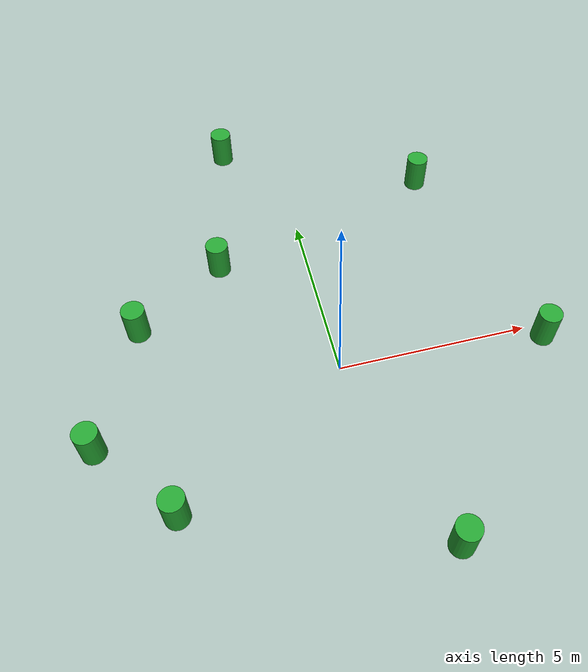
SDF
<sdf version="1.7">
 <world name="default">
  <scene><ambient>0.95 0.95 0.95 1</ambient><background>0.3 0.3 0.3 1</background><shadows>1</shadows></scene>
  <light name="sun" type="directional">
   <pose>0 0 10 0 -0 0</pose>
   <diffuse>0.8 0.8 0.8 1</diffuse>
   <specular>0.2 0.2 0.2 1</specular>
   <attenuation>
    <range>1000</range>
    <constant>0.9</constant>
    <linear>0.01</linear>
    <quadratic>0.001</quadratic>
   </attenuation>
   <direction>-0.5 0.1 -0.9</direction>
   <spot><inner_angle>0</inner_angle><outer_angle>0</outer_angle><falloff>0</falloff></spot>
  </light>
  <spherical_coordinates>
   <surface_model>EARTH_WGS84</surface_model>
   <latitude_deg>38.1615</latitude_deg>
   <longitude_deg>-122.455</longitude_deg>
   <elevation>488</elevation>
   <heading_deg>0</heading_deg>
  </spherical_coordinates>
  <physics name="default_physics" default="0" type="ode">
   <ode>
    <solver>
     <type>quick</type>
     <iters>10</iters>
     <sor>1.3</sor>
     <use_dynamic_moi_rescaling>0</use_dynamic_moi_rescaling>
    </solver>
    <constraints>
     <cfm>0</cfm>
     <erp>0.2</erp>
     <contact_max_correcting_vel>100</contact_max_correcting_vel>
     <contact_surface_layer>0.001</contact_surface_layer>
    </constraints>
   </ode>
   <max_step_size>0.004</max_step_size>
   <real_time_factor>1</real_time_factor>
   <real_time_update_rate>250</real_time_update_rate>
   <gravity>0 0 -9.8066</gravity>
   <magnetic_field>6.0e-6 2.3e-5 -4.2e-5</magnetic_field>
  </physics>
  <gravity>0 0 -9.8</gravity>
  <magnetic_field>6e-06 2.3e-05 -4.2e-05</magnetic_field>
  <atmosphere type="adiabatic"/>
  <audio><device>default</device></audio>
  <model name="longCylinder">
   <link name="link">
    <inertial>
     <mass>1</mass>
     <inertia><ixx>0.145833</ixx><ixy>0</ixy><ixz>0</ixz><iyy>0.145833</iyy><iyz>0</iyz><izz>0.125</izz></inertia>
    </inertial>
    <kinematic>1</kinematic>
    <visual name="visual">
     <geometry><cylinder><radius>0.3</radius><length>1</length></cylinder></geometry>
     <material>
      <script><name>Gazebo/Green</name><uri>file://media/materials/scripts/gazebo.material</uri></script>
      <shader type="pixel"><normal_map>__default__</normal_map></shader>
      <ambient>0.2 0.8 0.2 1</ambient>
      <diffuse>0.7 0.7 0.7 1</diffuse>
      <specular>0.01 0.01 0.01 1</specular>
      <emissive>0 0 0 1</emissive>
     </material>
    </visual>
    <collision name="collision">
     <geometry><cylinder><radius>0.3</radius><length>1</length></cylinder></geometry>
     <surface>
      <friction>
       <ode><mu>1</mu><mu2>1</mu2><fdir1>0 0 0</fdir1><slip1>0</slip1><slip2>0</slip2></ode>
       <torsional>
        <coefficient>1</coefficient>
        <patch_radius>0</patch_radius>
        <surface_radius>0</surface_radius>
        <use_patch_radius>1</use_patch_radius>
        <ode><slip>0</slip></ode>
       </torsional>
      </friction>
      <bounce><restitution_coefficient>0</restitution_coefficient><threshold>1e+06</threshold></bounce>
      <contact>
       <collide_without_contact>0</collide_without_contact>
       <collide_without_contact_bitmask>1</collide_without_contact_bitmask>
       <collide_bitmask>1</collide_bitmask>
       <ode>
        <soft_cfm>0</soft_cfm>
        <soft_erp>0.2</soft_erp>
        <kp>1e+13</kp>
        <kd>1</kd>
        <max_vel>0.01</max_vel>
        <min_depth>0</min_depth>
       </ode>
       <bullet>
        <split_impulse>1</split_impulse>
        <split_impulse_penetration_threshold>-0.01</split_impulse_penetration_threshold>
        <soft_cfm>0</soft_cfm>
        <soft_erp>0.2</soft_erp>
        <kp>1e+13</kp>
        <kd>1</kd>
       </bullet>
      </contact>
     </surface>
    </collision>
   </link>
   <static>0</static>
   <pose>-6.11592 -0.851035 0.55405 -0.00262 0.026609 -0.000559</pose>
  </model>
  <model name="longCylinder_clone">
   <link name="link">
    <inertial>
     <mass>1</mass>
     <inertia><ixx>0.145833</ixx><ixy>0</ixy><ixz>0</ixz><iyy>0.145833</iyy><iyz>0</iyz><izz>0.125</izz></inertia>
    </inertial>
    <kinematic>1</kinematic>
    <visual name="visual">
     <geometry><cylinder><radius>0.3</radius><length>1</length></cylinder></geometry>
     <material>
      <script><name>Gazebo/Green</name><uri>file://media/materials/scripts/gazebo.material</uri></script>
      <shader type="pixel"><normal_map>__default__</normal_map></shader>
      <ambient>0.2 0.8 0.2 1</ambient>
      <diffuse>0.7 0.7 0.7 1</diffuse>
      <specular>0.01 0.01 0.01 1</specular>
      <emissive>0 0 0 1</emissive>
     </material>
    </visual>
    <collision name="collision">
     <geometry><cylinder><radius>0.3</radius><length>1</length></cylinder></geometry>
     <surface>
      <friction>
       <ode><mu>1</mu><mu2>1</mu2><fdir1>0 0 0</fdir1><slip1>0</slip1><slip2>0</slip2></ode>
       <torsional>
        <coefficient>1</coefficient>
        <patch_radius>0</patch_radius>
        <surface_radius>0</surface_radius>
        <use_patch_radius>1</use_patch_radius>
        <ode><slip>0</slip></ode>
       </torsional>
      </friction>
      <bounce><restitution_coefficient>0</restitution_coefficient><threshold>1e+06</threshold></bounce>
      <contact>
       <collide_without_contact>0</collide_without_contact>
       <collide_without_contact_bitmask>1</collide_without_contact_bitmask>
       <collide_bitmask>1</collide_bitmask>
       <ode>
        <soft_cfm>0</soft_cfm>
        <soft_erp>0.2</soft_erp>
        <kp>1e+13</kp>
        <kd>1</kd>
        <max_vel>0.01</max_vel>
        <min_depth>0</min_depth>
       </ode>
       <bullet>
        <split_impulse>1</split_impulse>
        <split_impulse_penetration_threshold>-0.01</split_impulse_penetration_threshold>
        <soft_cfm>0</soft_cfm>
        <soft_erp>0.2</soft_erp>
        <kp>1e+13</kp>
        <kd>1</kd>
       </bullet>
      </contact>
     </surface>
    </collision>
   </link>
   <static>0</static>
   <pose>-4.81045 2.33294 0.55405 -0.00262 0.026609 -0.000559</pose>
  </model>
  <model name="longCylinder_clone_0">
   <link name="link">
    <inertial>
     <mass>1</mass>
     <inertia><ixx>0.145833</ixx><ixy>0</ixy><ixz>0</ixz><iyy>0.145833</iyy><iyz>0</iyz><izz>0.125</izz></inertia>
    </inertial>
    <kinematic>1</kinematic>
    <visual name="visual">
     <geometry><cylinder><radius>0.3</radius><length>1</length></cylinder></geometry>
     <material>
      <script><name>Gazebo/Green</name><uri>file://media/materials/scripts/gazebo.material</uri></script>
      <shader type="pixel"><normal_map>__default__</normal_map></shader>
      <ambient>0.2 0.8 0.2 1</ambient>
      <diffuse>0.7 0.7 0.7 1</diffuse>
      <specular>0.01 0.01 0.01 1</specular>
      <emissive>0 0 0 1</emissive>
     </material>
    </visual>
    <collision name="collision">
     <geometry><cylinder><radius>0.3</radius><length>1</length></cylinder></geometry>
     <surface>
      <friction>
       <ode><mu>1</mu><mu2>1</mu2><fdir1>0 0 0</fdir1><slip1>0</slip1><slip2>0</slip2></ode>
       <torsional>
        <coefficient>1</coefficient>
        <patch_radius>0</patch_radius>
        <surface_radius>0</surface_radius>
        <use_patch_radius>1</use_patch_radius>
        <ode><slip>0</slip></ode>
       </torsional>
      </friction>
      <bounce><restitution_coefficient>0</restitution_coefficient><threshold>1e+06</threshold></bounce>
      <contact>
       <collide_without_contact>0</collide_without_contact>
       <collide_without_contact_bitmask>1</collide_without_contact_bitmask>
       <collide_bitmask>1</collide_bitmask>
       <ode>
        <soft_cfm>0</soft_cfm>
        <soft_erp>0.2</soft_erp>
        <kp>1e+13</kp>
        <kd>1</kd>
        <max_vel>0.01</max_vel>
        <min_depth>0</min_depth>
       </ode>
       <bullet>
        <split_impulse>1</split_impulse>
        <split_impulse_penetration_threshold>-0.01</split_impulse_penetration_threshold>
        <soft_cfm>0</soft_cfm>
        <soft_erp>0.2</soft_erp>
        <kp>1e+13</kp>
        <kd>1</kd>
       </bullet>
      </contact>
     </surface>
    </collision>
   </link>
   <static>0</static>
   <pose>-2.42311 4 0.55405 -0.00262 0.026609 -0.000559</pose>
  </model>
  <model name="longCylinder_clone_1">
   <link name="link">
    <inertial>
     <mass>1</mass>
     <inertia><ixx>0.145833</ixx><ixy>0</ixy><ixz>0</ixz><iyy>0.145833</iyy><iyz>0</iyz><izz>0.125</izz></inertia>
    </inertial>
    <kinematic>1</kinematic>
    <visual name="visual">
     <geometry><cylinder><radius>0.3</radius><length>1</length></cylinder></geometry>
     <material>
      <script><name>Gazebo/Green</name><uri>file://media/materials/scripts/gazebo.material</uri></script>
      <shader type="pixel"><normal_map>__default__</normal_map></shader>
      <ambient>0.2 0.8 0.2 1</ambient>
      <diffuse>0.7 0.7 0.7 1</diffuse>
      <specular>0.01 0.01 0.01 1</specular>
      <emissive>0 0 0 1</emissive>
     </material>
    </visual>
    <collision name="collision">
     <geometry><cylinder><radius>0.3</radius><length>1</length></cylinder></geometry>
     <surface>
      <friction>
       <ode><mu>1</mu><mu2>1</mu2><fdir1>0 0 0</fdir1><slip1>0</slip1><slip2>0</slip2></ode>
       <torsional>
        <coefficient>1</coefficient>
        <patch_radius>0</patch_radius>
        <surface_radius>0</surface_radius>
        <use_patch_radius>1</use_patch_radius>
        <ode><slip>0</slip></ode>
       </torsional>
      </friction>
      <bounce><restitution_coefficient>0</restitution_coefficient><threshold>1e+06</threshold></bounce>
      <contact>
       <collide_without_contact>0</collide_without_contact>
       <collide_without_contact_bitmask>1</collide_without_contact_bitmask>
       <collide_bitmask>1</collide_bitmask>
       <ode>
        <soft_cfm>0</soft_cfm>
        <soft_erp>0.2</soft_erp>
        <kp>1e+13</kp>
        <kd>1</kd>
        <max_vel>0.01</max_vel>
        <min_depth>0</min_depth>
       </ode>
       <bullet>
        <split_impulse>1</split_impulse>
        <split_impulse_penetration_threshold>-0.01</split_impulse_penetration_threshold>
        <soft_cfm>0</soft_cfm>
        <soft_erp>0.2</soft_erp>
        <kp>1e+13</kp>
        <kd>1</kd>
       </bullet>
      </contact>
     </surface>
    </collision>
   </link>
   <static>0</static>
   <pose>1.36299 -5.0016 0.55405 -0.00262 0.026609 -0.000559</pose>
  </model>
  <model name="longCylinder_clone_2">
   <link name="link">
    <inertial>
     <mass>1</mass>
     <inertia><ixx>0.145833</ixx><ixy>0</ixy><ixz>0</ixz><iyy>0.145833</iyy><iyz>0</iyz><izz>0.125</izz></inertia>
    </inertial>
    <kinematic>1</kinematic>
    <visual name="visual">
     <geometry><cylinder><radius>0.3</radius><length>1</length></cylinder></geometry>
     <material>
      <script><name>Gazebo/Green</name><uri>file://media/materials/scripts/gazebo.material</uri></script>
      <shader type="pixel"><normal_map>__default__</normal_map></shader>
      <ambient>0.2 0.8 0.2 1</ambient>
      <diffuse>0.7 0.7 0.7 1</diffuse>
      <specular>0.01 0.01 0.01 1</specular>
      <emissive>0 0 0 1</emissive>
     </material>
    </visual>
    <collision name="collision">
     <geometry><cylinder><radius>0.3</radius><length>1</length></cylinder></geometry>
     <surface>
      <friction>
       <ode><mu>1</mu><mu2>1</mu2><fdir1>0 0 0</fdir1><slip1>0</slip1><slip2>0</slip2></ode>
       <torsional>
        <coefficient>1</coefficient>
        <patch_radius>0</patch_radius>
        <surface_radius>0</surface_radius>
        <use_patch_radius>1</use_patch_radius>
        <ode><slip>0</slip></ode>
       </torsional>
      </friction>
      <bounce><restitution_coefficient>0</restitution_coefficient><threshold>1e+06</threshold></bounce>
      <contact>
       <collide_without_contact>0</collide_without_contact>
       <collide_without_contact_bitmask>1</collide_without_contact_bitmask>
       <collide_bitmask>1</collide_bitmask>
       <ode>
        <soft_cfm>0</soft_cfm>
        <soft_erp>0.2</soft_erp>
        <kp>1e+13</kp>
        <kd>1</kd>
        <max_vel>0.01</max_vel>
        <min_depth>0</min_depth>
       </ode>
       <bullet>
        <split_impulse>1</split_impulse>
        <split_impulse_penetration_threshold>-0.01</split_impulse_penetration_threshold>
        <soft_cfm>0</soft_cfm>
        <soft_erp>0.2</soft_erp>
        <kp>1e+13</kp>
        <kd>1</kd>
       </bullet>
      </contact>
     </surface>
    </collision>
   </link>
   <static>0</static>
   <pose>-4.42813 -2.86625 0.55405 -0.00262 0.026609 -0.000559</pose>
  </model>
  <model name="longCylinder_clone_3">
   <link name="link">
    <inertial>
     <mass>1</mass>
     <inertia><ixx>0.145833</ixx><ixy>0</ixy><ixz>0</ixz><iyy>0.145833</iyy><iyz>0</iyz><izz>0.125</izz></inertia>
    </inertial>
    <kinematic>1</kinematic>
    <visual name="visual">
     <geometry><cylinder><radius>0.3</radius><length>1</length></cylinder></geometry>
     <material>
      <script><name>Gazebo/Green</name><uri>file://media/materials/scripts/gazebo.material</uri></script>
      <shader type="pixel"><normal_map>__default__</normal_map></shader>
      <ambient>0.2 0.8 0.2 1</ambient>
      <diffuse>0.7 0.7 0.7 1</diffuse>
      <specular>0.01 0.01 0.01 1</specular>
      <emissive>0 0 0 1</emissive>
     </material>
    </visual>
    <collision name="collision">
     <geometry><cylinder><radius>0.3</radius><length>1</length></cylinder></geometry>
     <surface>
      <friction>
       <ode><mu>1</mu><mu2>1</mu2><fdir1>0 0 0</fdir1><slip1>0</slip1><slip2>0</slip2></ode>
       <torsional>
        <coefficient>1</coefficient>
        <patch_radius>0</patch_radius>
        <surface_radius>0</surface_radius>
        <use_patch_radius>1</use_patch_radius>
        <ode><slip>0</slip></ode>
       </torsional>
      </friction>
      <bounce><restitution_coefficient>0</restitution_coefficient><threshold>1e+06</threshold></bounce>
      <contact>
       <collide_without_contact>0</collide_without_contact>
       <collide_without_contact_bitmask>1</collide_without_contact_bitmask>
       <collide_bitmask>1</collide_bitmask>
       <ode>
        <soft_cfm>0</soft_cfm>
        <soft_erp>0.2</soft_erp>
        <kp>1e+13</kp>
        <kd>1</kd>
        <max_vel>0.01</max_vel>
        <min_depth>0</min_depth>
       </ode>
       <bullet>
        <split_impulse>1</split_impulse>
        <split_impulse_penetration_threshold>-0.01</split_impulse_penetration_threshold>
        <soft_cfm>0</soft_cfm>
        <soft_erp>0.2</soft_erp>
        <kp>1e+13</kp>
        <kd>1</kd>
       </bullet>
      </contact>
     </surface>
    </collision>
   </link>
   <static>0</static>
   <pose>4 6 0.55405 -0.00262 0.026609 -0.000559</pose>
  </model>
  <model name="longCylinder_clone_4">
   <link name="link">
    <inertial>
     <mass>1</mass>
     <inertia><ixx>0.145833</ixx><ixy>0</ixy><ixz>0</ixz><iyy>0.145833</iyy><iyz>0</iyz><izz>0.125</izz></inertia>
    </inertial>
    <kinematic>1</kinematic>
    <visual name="visual">
     <geometry><cylinder><radius>0.3</radius><length>1</length></cylinder></geometry>
     <material>
      <script><name>Gazebo/Green</name><uri>file://media/materials/scripts/gazebo.material</uri></script>
      <shader type="pixel"><normal_map>__default__</normal_map></shader>
      <ambient>0.2 0.8 0.2 1</ambient>
      <diffuse>0.7 0.7 0.7 1</diffuse>
      <specular>0.01 0.01 0.01 1</specular>
      <emissive>0 0 0 1</emissive>
     </material>
    </visual>
    <collision name="collision">
     <geometry><cylinder><radius>0.3</radius><length>1</length></cylinder></geometry>
     <surface>
      <friction>
       <ode><mu>1</mu><mu2>1</mu2><fdir1>0 0 0</fdir1><slip1>0</slip1><slip2>0</slip2></ode>
       <torsional>
        <coefficient>1</coefficient>
        <patch_radius>0</patch_radius>
        <surface_radius>0</surface_radius>
        <use_patch_radius>1</use_patch_radius>
        <ode><slip>0</slip></ode>
       </torsional>
      </friction>
      <bounce><restitution_coefficient>0</restitution_coefficient><threshold>1e+06</threshold></bounce>
      <contact>
       <collide_without_contact>0</collide_without_contact>
       <collide_without_contact_bitmask>1</collide_without_contact_bitmask>
       <collide_bitmask>1</collide_bitmask>
       <ode>
        <soft_cfm>0</soft_cfm>
        <soft_erp>0.2</soft_erp>
        <kp>1e+13</kp>
        <kd>1</kd>
        <max_vel>0.01</max_vel>
        <min_depth>0</min_depth>
       </ode>
       <bullet>
        <split_impulse>1</split_impulse>
        <split_impulse_penetration_threshold>-0.01</split_impulse_penetration_threshold>
        <soft_cfm>0</soft_cfm>
        <soft_erp>0.2</soft_erp>
        <kp>1e+13</kp>
        <kd>1</kd>
       </bullet>
      </contact>
     </surface>
    </collision>
   </link>
   <static>0</static>
   <pose>5.35248 -0.407473 0.55405 -0.00262 0.026609 -0.000559</pose>
  </model>
  <model name="longCylinder_clone_5">
   <link name="link">
    <inertial>
     <mass>1</mass>
     <inertia><ixx>0.145833</ixx><ixy>0</ixy><ixz>0</ixz><iyy>0.145833</iyy><iyz>0</iyz><izz>0.125</izz></inertia>
    </inertial>
    <kinematic>1</kinematic>
    <visual name="visual">
     <geometry><cylinder><radius>0.3</radius><length>1</length></cylinder></geometry>
     <material>
      <script><name>Gazebo/Green</name><uri>file://media/materials/scripts/gazebo.material</uri></script>
      <shader type="pixel"><normal_map>__default__</normal_map></shader>
      <ambient>0.2 0.8 0.2 1</ambient>
      <diffuse>0.7 0.7 0.7 1</diffuse>
      <specular>0.01 0.01 0.01 1</specular>
      <emissive>0 0 0 1</emissive>
     </material>
    </visual>
    <collision name="collision">
     <geometry><cylinder><radius>0.3</radius><length>1</length></cylinder></geometry>
     <surface>
      <friction>
       <ode><mu>1</mu><mu2>1</mu2><fdir1>0 0 0</fdir1><slip1>0</slip1><slip2>0</slip2></ode>
       <torsional>
        <coefficient>1</coefficient>
        <patch_radius>0</patch_radius>
        <surface_radius>0</surface_radius>
        <use_patch_radius>1</use_patch_radius>
        <ode><slip>0</slip></ode>
       </torsional>
      </friction>
      <bounce><restitution_coefficient>0</restitution_coefficient><threshold>1e+06</threshold></bounce>
      <contact>
       <collide_without_contact>0</collide_without_contact>
       <collide_without_contact_bitmask>1</collide_without_contact_bitmask>
       <collide_bitmask>1</collide_bitmask>
       <ode>
        <soft_cfm>0</soft_cfm>
        <soft_erp>0.2</soft_erp>
        <kp>1e+13</kp>
        <kd>1</kd>
        <max_vel>0.01</max_vel>
        <min_depth>0</min_depth>
       </ode>
       <bullet>
        <split_impulse>1</split_impulse>
        <split_impulse_penetration_threshold>-0.01</split_impulse_penetration_threshold>
        <soft_cfm>0</soft_cfm>
        <soft_erp>0.2</soft_erp>
        <kp>1e+13</kp>
        <kd>1</kd>
       </bullet>
      </contact>
     </surface>
    </collision>
   </link>
   <static>0</static>
   <pose>-1.59509 8.61945 0.55405 -0.00262 0.026609 -0.000559</pose>
  </model>
 </world>
</sdf>
